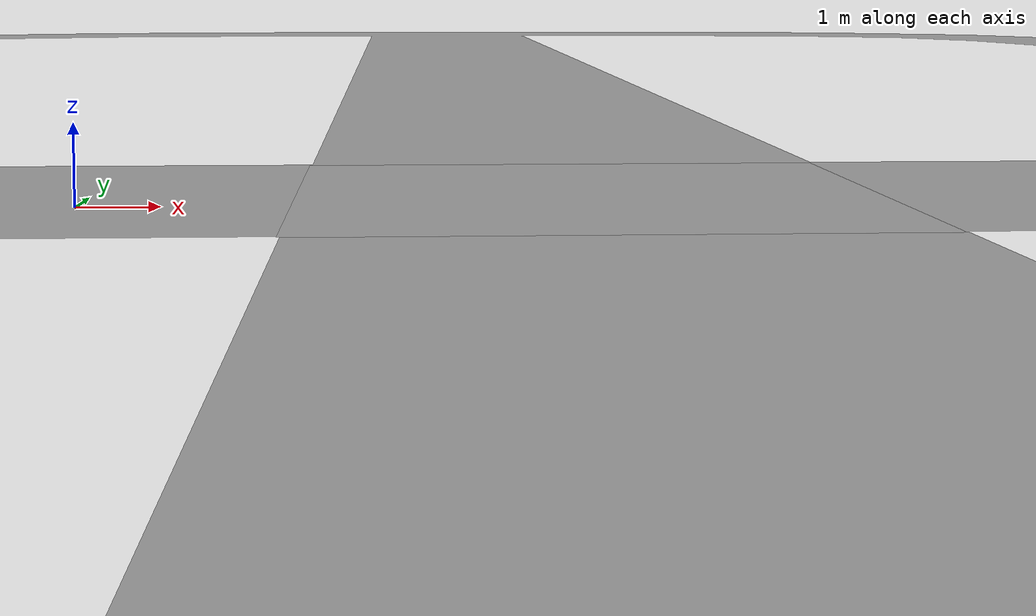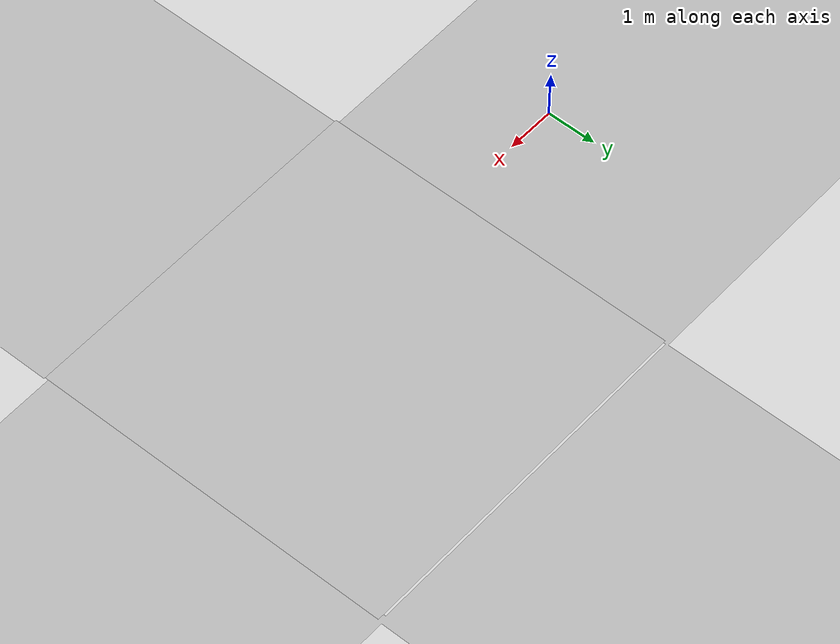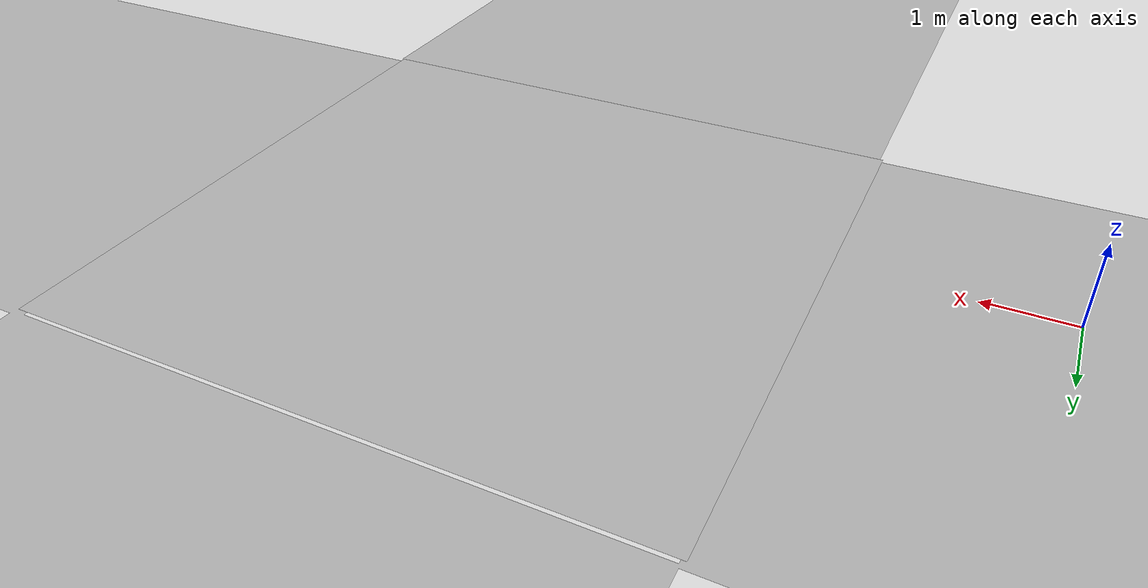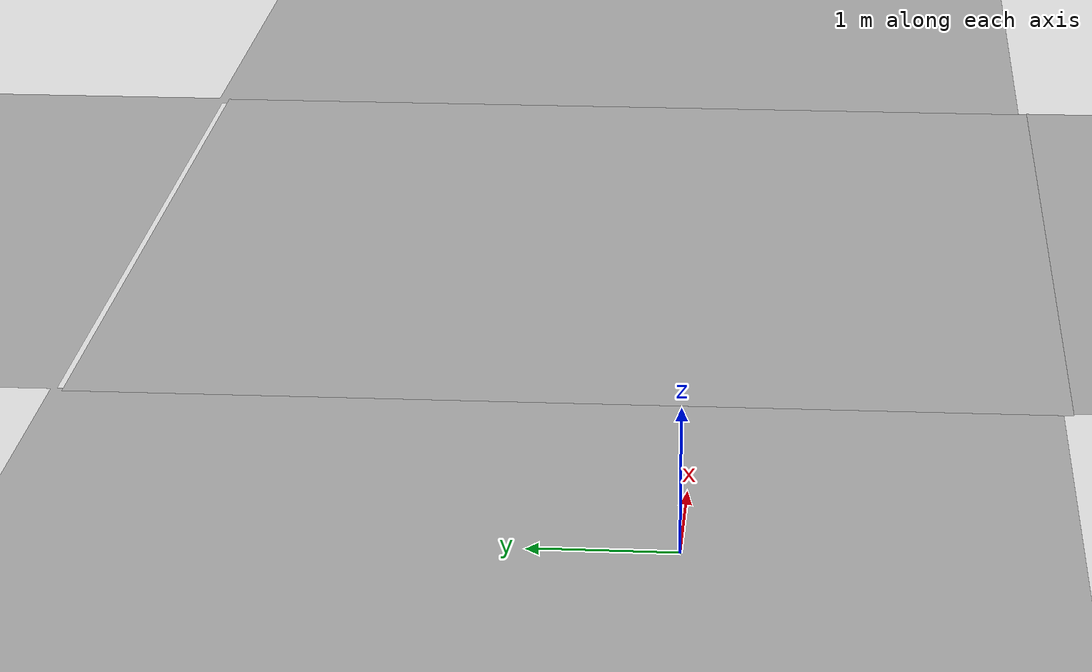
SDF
<?xml version='1.0'?>
<sdf version='1.7'>
  <model name='self_driving_track'>
    <link name='link_0'>
      <pose>-0.03442 0.020057 0 0 -0 0</pose>
      <visual name='visual'>
        <pose>0 0 0 0 -0 0</pose>
        <geometry>
          <mesh>
            <uri>/root/autonomous_ws/src/self_driving_car_pkg/models/track/meshes/complete_circuit.dae</uri>
            <scale>1 1 1</scale>
          </mesh>
        </geometry>

        <material>
          <script>
            <uri>/root/autonomous_ws/src/self_driving_car_pkg/models/track/materials/scripts</uri>
            <uri>/root/autonomous_ws/src/self_driving_car_pkg/models/track/materials/textures</uri>
            <name>road/Diffuse</name>
          </script>
        </material>

        <transparency>0</transparency>
        <cast_shadows>1</cast_shadows>
      </visual>

      <collision name='collision'>
        <laser_retro>0</laser_retro>
        <max_contacts>10</max_contacts>
        <pose>0 0 0 0 -0 0</pose>
        <geometry>
          <mesh>
            <uri>/root/autonomous_ws/src/self_driving_car_pkg/models/track/meshes/complete_circuit.dae</uri>
            <scale>1 1 1</scale>
          </mesh>
        </geometry>
        <surface>
          <friction>
            <ode>
              <mu>1</mu>
              <mu2>1</mu2>
              <fdir1>0 0 0</fdir1>
              <slip1>0</slip1>
              <slip2>0</slip2>
            </ode>
            <torsional>
              <coefficient>1</coefficient>
              <patch_radius>0</patch_radius>
              <surface_radius>0</surface_radius>
              <use_patch_radius>1</use_patch_radius>
              <ode>
                <slip>0</slip>
              </ode>
            </torsional>
          </friction>
          <bounce>
            <restitution_coefficient>0</restitution_coefficient>
            <threshold>1e+06</threshold>
          </bounce>
          <contact>
            <collide_without_contact>0</collide_without_contact>
            <collide_without_contact_bitmask>1</collide_without_contact_bitmask>
            <collide_bitmask>1</collide_bitmask>
            <ode>
              <soft_cfm>0</soft_cfm>
              <soft_erp>0.2</soft_erp>
              <kp>1e+13</kp>
              <kd>1</kd>
              <max_vel>0.01</max_vel>
              <min_depth>0</min_depth>
            </ode>
            <bullet>
              <split_impulse>1</split_impulse>
              <split_impulse_penetration_threshold>-0.01</split_impulse_penetration_threshold>
              <soft_cfm>0</soft_cfm>
              <soft_erp>0.2</soft_erp>
              <kp>1e+13</kp>
              <kd>1</kd>
            </bullet>
          </contact>
        </surface>
      </collision>
    </link>

    <link name='link_1'>

      <pose>0.034415 -0.020057 0 0 -0 0</pose>
      <visual name='visual'>
        <pose>0 0 0 0 -0 0</pose>
        <geometry>
          <mesh>
            <uri>/root/autonomous_ws/src/self_driving_car_pkg/models/track/meshes/chowk.dae</uri>
            <scale>1 1 1</scale>
          </mesh>
        </geometry>

        <material>
          <script>
            <uri>/root/autonomous_ws/src/self_driving_car_pkg/models/track/materials/scripts</uri>
            <uri>/root/autonomous_ws/src/self_driving_car_pkg/models/track/materials/textures</uri>
            <name>chowk/Diffuse</name>
          </script>
        </material>

        <transparency>0</transparency>
        <cast_shadows>1</cast_shadows>
      </visual>

      <collision name='collision'>
        <laser_retro>0</laser_retro>
        <max_contacts>10</max_contacts>
        <pose>0 0 0 0 -0 0</pose>
        <geometry>
          <mesh>
            <uri>/root/autonomous_ws/src/self_driving_car_pkg/models/track/meshes/chowk.dae</uri>
            <scale>1 1 1</scale>
          </mesh>
        </geometry>
        <surface>
          <friction>
            <ode>
              <mu>1</mu>
              <mu2>1</mu2>
              <fdir1>0 0 0</fdir1>
              <slip1>0</slip1>
              <slip2>0</slip2>
            </ode>
            <torsional>
              <coefficient>1</coefficient>
              <patch_radius>0</patch_radius>
              <surface_radius>0</surface_radius>
              <use_patch_radius>1</use_patch_radius>
              <ode>
                <slip>0</slip>
              </ode>
            </torsional>
          </friction>
          <bounce>
            <restitution_coefficient>0</restitution_coefficient>
            <threshold>1e+06</threshold>
          </bounce>
          <contact>
            <collide_without_contact>0</collide_without_contact>
            <collide_without_contact_bitmask>1</collide_without_contact_bitmask>
            <collide_bitmask>1</collide_bitmask>
            <ode>
              <soft_cfm>0</soft_cfm>
              <soft_erp>0.2</soft_erp>
              <kp>1e+13</kp>
              <kd>1</kd>
              <max_vel>0.01</max_vel>
              <min_depth>0</min_depth>
            </ode>
            <bullet>
              <split_impulse>1</split_impulse>
              <split_impulse_penetration_threshold>-0.01</split_impulse_penetration_threshold>
              <soft_cfm>0</soft_cfm>
              <soft_erp>0.2</soft_erp>
              <kp>1e+13</kp>
              <kd>1</kd>
            </bullet>
          </contact>
        </surface>
      </collision>
    </link>

    <static>1</static>
    <allow_auto_disable>1</allow_auto_disable>
  </model>
</sdf>
